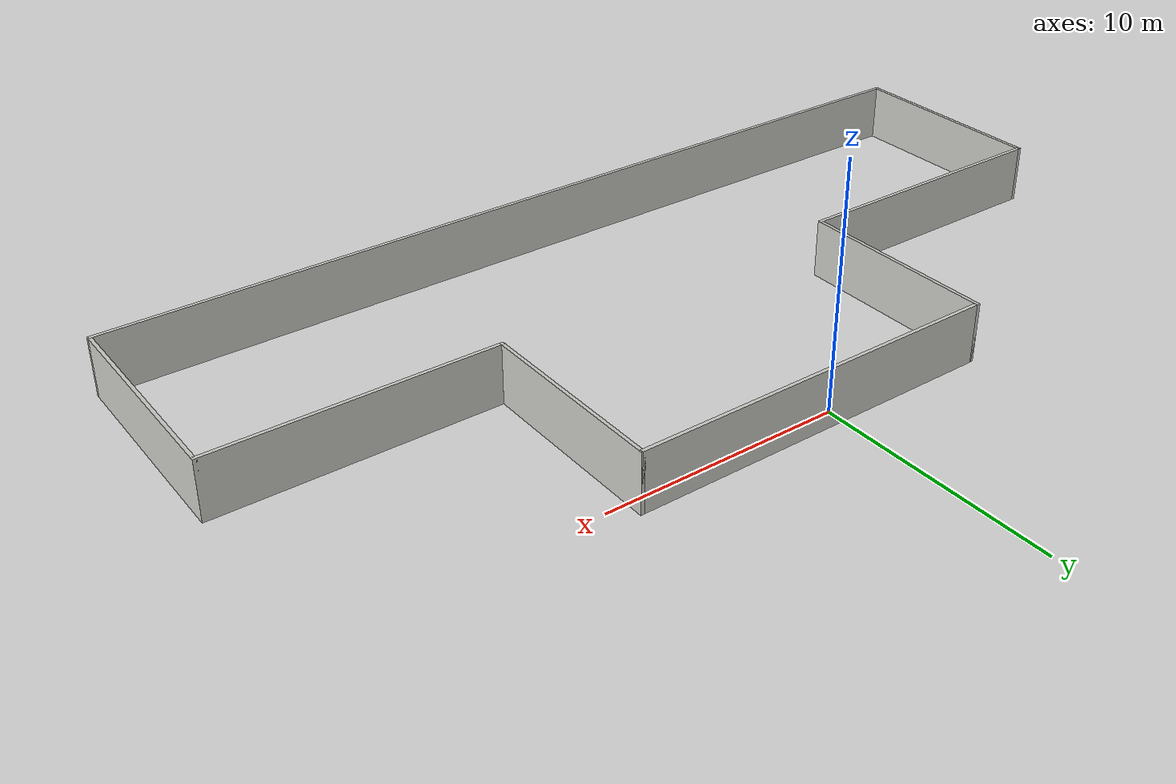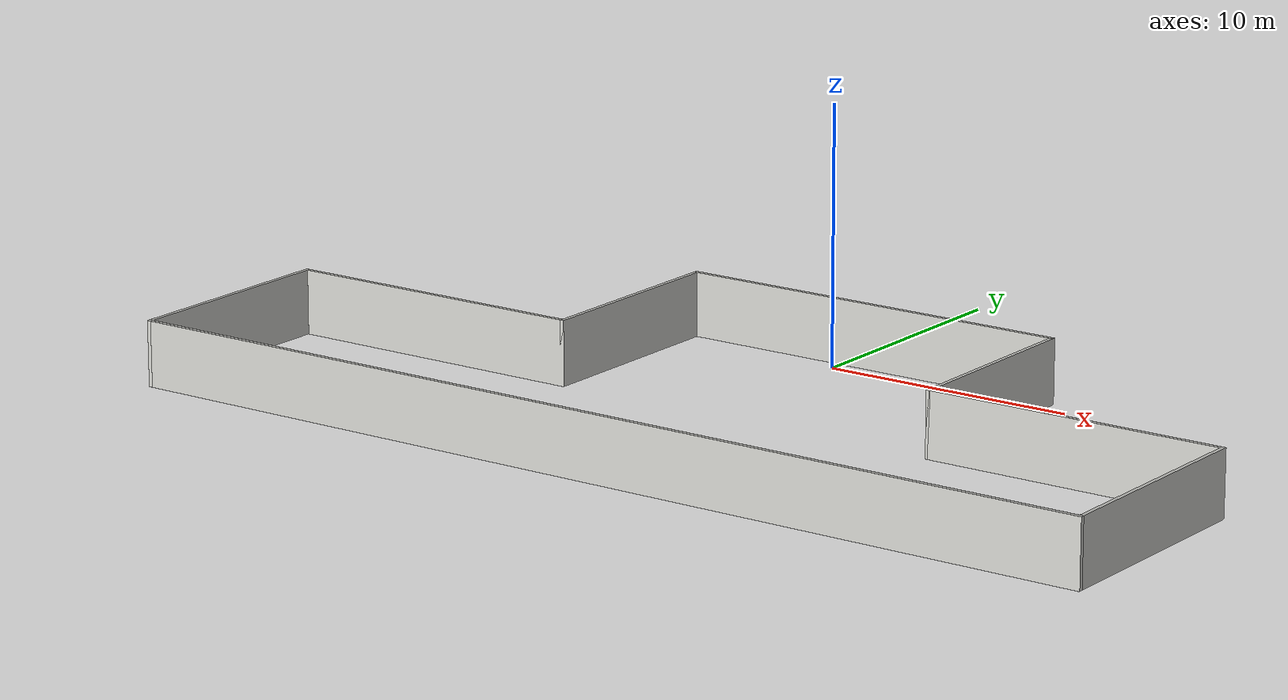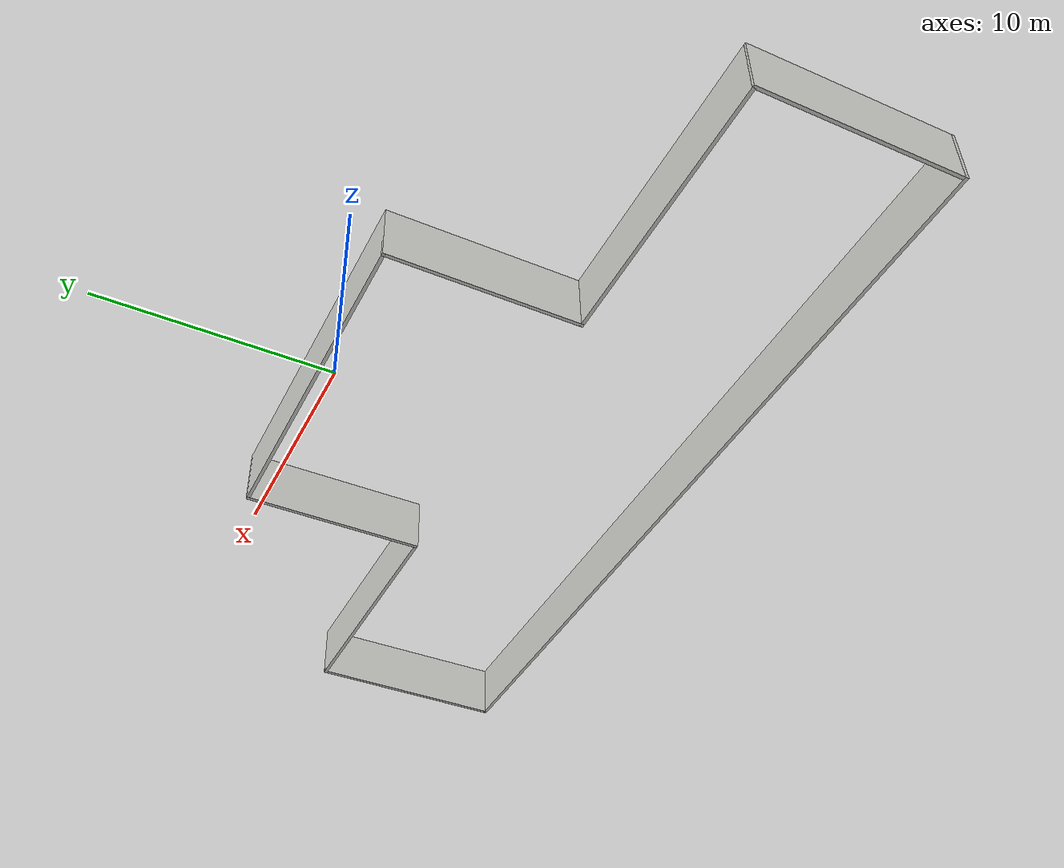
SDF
<?xml version='1.0'?>
<sdf version='1.6'>
  <model name='my_green_walls'>
    <pose frame=''>0.932513 -7.95734 0 0 -0 0</pose>
    <link name='Wall_10'>
      <collision name='Wall_10_Collision'>
        <geometry>
          <box>
            <size>39.5 0.15 2.5</size>
          </box>
        </geometry>
        <pose frame=''>0 0 1.25 0 -0 0</pose>
      </collision>
      <visual name='Wall_10_Visual'>
        <pose frame=''>0 0 1.25 0 -0 0</pose>
        <geometry>
          <box>
            <size>39.5 0.15 2.5</size>
          </box>
        </geometry>
        <material>
          <script>
            <uri>file://media/materials/scripts/gazebo.material</uri>
            <name>Gazebo/CeilingTiled</name>
          </script>
          <ambient>0.435294 0.796078 0.67451 1</ambient>
        </material>
      </visual>
      <pose frame=''>-1e-06 -8.6 0 0 -0 3.14159</pose>
    </link>
    <link name='Wall_28'>
      <collision name='Wall_28_Collision'>
        <geometry>
          <box>
            <size>9 0.15 2.5</size>
          </box>
        </geometry>
        <pose frame=''>0 0 1.25 0 -0 0</pose>
      </collision>
      <visual name='Wall_28_Visual'>
        <pose frame=''>0 0 1.25 0 -0 0</pose>
        <geometry>
          <box>
            <size>9 0.15 2.5</size>
          </box>
        </geometry>
        <material>
          <script>
            <uri>file://media/materials/scripts/gazebo.material</uri>
            <name>Gazebo/CeilingTiled</name>
          </script>
          <ambient>0.435294 0.796078 0.67451 1</ambient>
        </material>
      </visual>
      <pose frame=''>-19.675 -4.175 0 0 -0 1.5708</pose>
    </link>
    <link name='Wall_29'>
      <collision name='Wall_29_Collision'>
        <geometry>
          <box>
            <size>12.25 0.15 2.5</size>
          </box>
        </geometry>
        <pose frame=''>0 0 1.25 0 -0 0</pose>
      </collision>
      <visual name='Wall_29_Visual'>
        <pose frame=''>0 0 1.25 0 -0 0</pose>
        <geometry>
          <box>
            <size>12.25 0.15 2.5</size>
          </box>
        </geometry>
        <material>
          <script>
            <uri>file://media/materials/scripts/gazebo.material</uri>
            <name>Gazebo/CeilingTiled</name>
          </script>
          <ambient>0.435294 0.796078 0.67451 1</ambient>
        </material>
      </visual>
      <pose frame=''>-13.625 0.25 0 0 -0 0</pose>
    </link>
    <link name='Wall_30'>
      <collision name='Wall_30_Collision'>
        <geometry>
          <box>
            <size>8.5 0.15 2.5</size>
          </box>
        </geometry>
        <pose frame=''>0 0 1.25 0 -0 0</pose>
      </collision>
      <visual name='Wall_30_Visual'>
        <pose frame=''>0 0 1.25 0 -0 0</pose>
        <geometry>
          <box>
            <size>8.5 0.15 2.5</size>
          </box>
        </geometry>
        <material>
          <script>
            <uri>file://media/materials/scripts/gazebo.material</uri>
            <name>Gazebo/CeilingTiled</name>
          </script>
          <ambient>0.435294 0.796078 0.67451 1</ambient>
        </material>
      </visual>
      <pose frame=''>-7.575 4.425 0 0 -0 1.5708</pose>
    </link>
    <link name='Wall_32'>
      <collision name='Wall_32_Collision'>
        <geometry>
          <box>
            <size>15.75 0.15 2.5</size>
          </box>
        </geometry>
        <pose frame=''>0 0 1.25 0 -0 0</pose>
      </collision>
      <visual name='Wall_32_Visual'>
        <pose frame=''>0 0 1.25 0 -0 0</pose>
        <geometry>
          <box>
            <size>15.75 0.15 2.5</size>
          </box>
        </geometry>
        <material>
          <script>
            <uri>file://media/materials/scripts/gazebo.material</uri>
            <name>Gazebo/CeilingTiled</name>
          </script>
          <ambient>0.435294 0.796078 0.67451 1</ambient>
        </material>
      </visual>
      <pose frame=''>0.224999 8.6 0 0 -0 0</pose>
    </link>
    <link name='Wall_7'>
      <collision name='Wall_7_Collision'>
        <geometry>
          <box>
            <size>8.25 0.15 2.5</size>
          </box>
        </geometry>
        <pose frame=''>0 0 1.25 0 -0 0</pose>
      </collision>
      <visual name='Wall_7_Visual'>
        <pose frame=''>0 0 1.25 0 -0 0</pose>
        <geometry>
          <box>
            <size>8.25 0.15 2.5</size>
          </box>
        </geometry>
        <material>
          <script>
            <uri>file://media/materials/scripts/gazebo.material</uri>
            <name>Gazebo/CeilingTiled</name>
          </script>
          <ambient>0.435294 0.796078 0.67451 1</ambient>
        </material>
      </visual>
      <pose frame=''>8.075 4.55 0 0 0 -1.5708</pose>
    </link>
    <link name='Wall_8'>
      <collision name='Wall_8_Collision'>
        <geometry>
          <box>
            <size>11.75 0.15 2.5</size>
          </box>
        </geometry>
        <pose frame=''>0 0 1.25 0 -0 0</pose>
      </collision>
      <visual name='Wall_8_Visual'>
        <pose frame=''>0 0 1.25 0 -0 0</pose>
        <geometry>
          <box>
            <size>11.75 0.15 2.5</size>
          </box>
        </geometry>
        <material>
          <script>
            <uri>file://media/materials/scripts/gazebo.material</uri>
            <name>Gazebo/CeilingTiled</name>
          </script>
          <ambient>0.435294 0.796078 0.67451 1</ambient>
        </material>
      </visual>
      <pose frame=''>13.875 0.5 0 0 -0 0</pose>
    </link>
    <link name='Wall_9'>
      <collision name='Wall_9_Collision'>
        <geometry>
          <box>
            <size>9.25 0.15 2.5</size>
          </box>
        </geometry>
        <pose frame=''>0 0 1.25 0 -0 0</pose>
      </collision>
      <visual name='Wall_9_Visual'>
        <pose frame=''>0 0 1.25 0 -0 0</pose>
        <geometry>
          <box>
            <size>9.25 0.15 2.5</size>
          </box>
        </geometry>
        <material>
          <script>
            <uri>file://media/materials/scripts/gazebo.material</uri>
            <name>Gazebo/CeilingTiled</name>
          </script>
          <ambient>0.435294 0.796078 0.67451 1</ambient>
        </material>
      </visual>
      <pose frame=''>19.675 -4.05 0 0 0 -1.5708</pose>
    </link>
    <static>1</static>
  </model>
</sdf>
